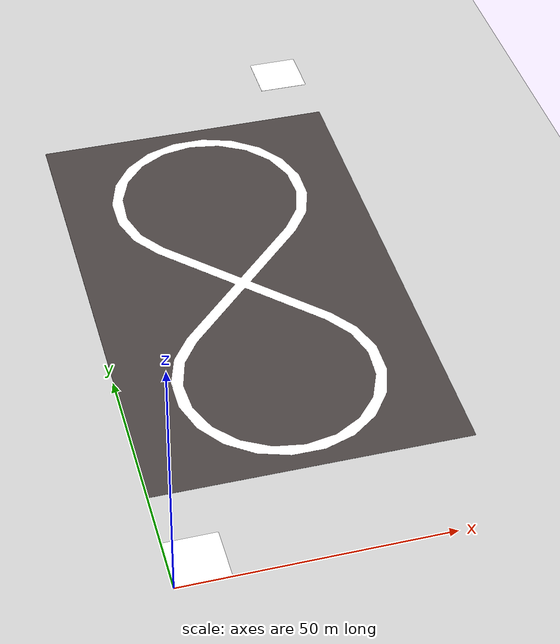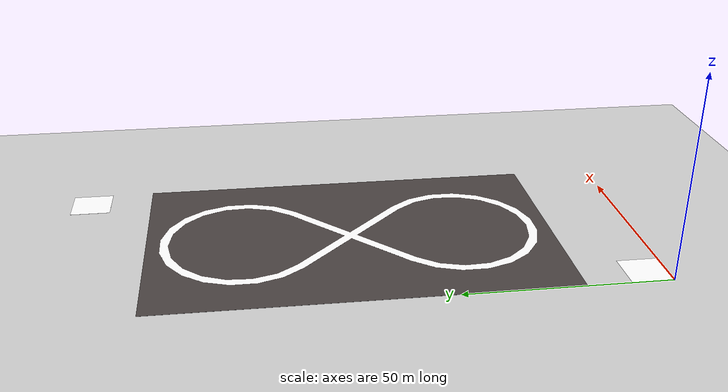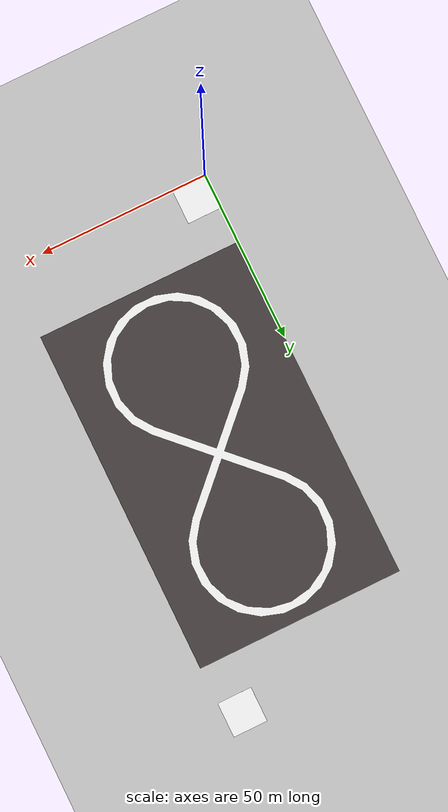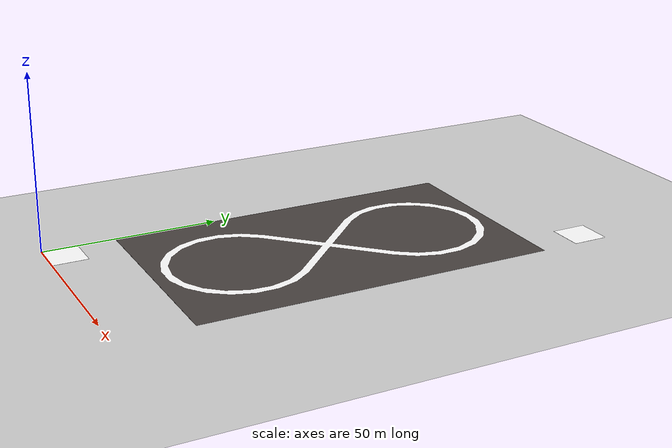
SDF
<?xml version="1.0" ?>
<sdf version="1.6">
	<world name="default">

		<!-- A global light source -->
		<include>
			<uri>model://sun</uri>
		</include>

		<!-- A ground plane -->
		<include>
			<uri>model://ground_plane</uri>
		</include>

				<!--Model Blender of Stage-->

		<model name="testbed_scene">
			<static>true</static>
			<pose>23.158678 75.310852 0 0 0 1.57</pose>
			<link name="test_scene">
				<visual name="visual">
					<geometry>
						<mesh><uri>/home/luisgrvc/catkin_ws/src/mbzirc/visualization/model/stage_01_gazebo.dae</uri></mesh>
					</geometry>
				</visual>
			</link>
		</model>
	</world>
</sdf>
